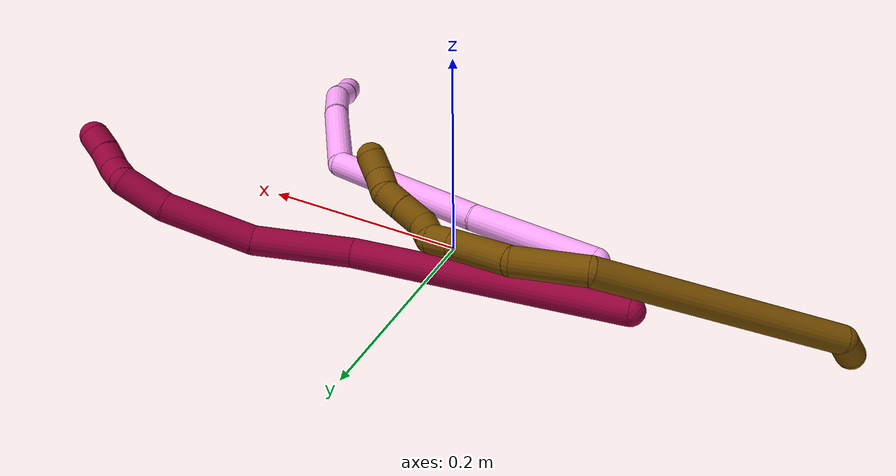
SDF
<sdf version="1.7">
 <world name="default">
  <model name="4">
   <static>0</static>
   <link name="4">
    <collision name="collision-cylinder-e_1_1_4">
     <pose>0.018922 -0.053253 0.024342 1.14205 0.312576 0.201767</pose>
     <geometry><cylinder><radius>0.0125</radius><length>0.123068</length></cylinder></geometry>
     <surface>
      <friction><ode><mu>1.16</mu><mu2>1.16</mu2><slip1>0</slip1><slip2>0</slip2></ode></friction>
      <contact><ode><kp>1e+06</kp><kd>1</kd><max_vel>0</max_vel><min_depth>0.001</min_depth></ode></contact>
     </surface>
    </collision>
    <visual name="visual-cylinder-e_1_1_4">
     <pose>0.018922 -0.053253 0.024342 1.14205 0.312576 0.201767</pose>
     <geometry><cylinder><radius>0.0125</radius><length>0.123068</length></cylinder></geometry>
     <material><ambient>1 0.65098 0.996078 1</ambient></material>
    </visual>
    <collision name="collision-cylinder-e_2_4_5">
     <pose>0.077298 -0.179467 0.078582 1.18189 0.463934 0.314357</pose>
     <geometry><cylinder><radius>0.0125</radius><length>0.176339</length></cylinder></geometry>
     <surface>
      <friction><ode><mu>1.16</mu><mu2>1.16</mu2><slip1>0</slip1><slip2>0</slip2></ode></friction>
      <contact><ode><kp>1e+06</kp><kd>1</kd><max_vel>0</max_vel><min_depth>0.001</min_depth></ode></contact>
     </surface>
    </collision>
    <visual name="visual-cylinder-e_2_4_5">
     <pose>0.077298 -0.179467 0.078582 1.18189 0.463934 0.314357</pose>
     <geometry><cylinder><radius>0.0125</radius><length>0.176339</length></cylinder></geometry>
     <material><ambient>1 0.65098 0.996078 1</ambient></material>
    </visual>
    <collision name="collision-cylinder-e_3_5_6">
     <pose>0.150055 -0.282926 0.094485 2.00104 0.781638 1.14204</pose>
     <geometry><cylinder><radius>0.0125</radius><length>0.094552</length></cylinder></geometry>
     <surface>
      <friction><ode><mu>1.16</mu><mu2>1.16</mu2><slip1>0</slip1><slip2>0</slip2></ode></friction>
      <contact><ode><kp>1e+06</kp><kd>1</kd><max_vel>0</max_vel><min_depth>0.001</min_depth></ode></contact>
     </surface>
    </collision>
    <visual name="visual-cylinder-e_3_5_6">
     <pose>0.150055 -0.282926 0.094485 2.00104 0.781638 1.14204</pose>
     <geometry><cylinder><radius>0.0125</radius><length>0.094552</length></cylinder></geometry>
     <material><ambient>1 0.65098 0.996078 1</ambient></material>
    </visual>
    <collision name="collision-cylinder-e_4_6_7">
     <pose>0.206675 -0.327983 0.074219 1.97744 0.973709 1.35474</pose>
     <geometry><cylinder><radius>0.0125</radius><length>0.056392</length></cylinder></geometry>
     <surface>
      <friction><ode><mu>1.16</mu><mu2>1.16</mu2><slip1>0</slip1><slip2>0</slip2></ode></friction>
      <contact><ode><kp>1e+06</kp><kd>1</kd><max_vel>0</max_vel><min_depth>0.001</min_depth></ode></contact>
     </surface>
    </collision>
    <visual name="visual-cylinder-e_4_6_7">
     <pose>0.206675 -0.327983 0.074219 1.97744 0.973709 1.35474</pose>
     <geometry><cylinder><radius>0.0125</radius><length>0.056392</length></cylinder></geometry>
     <material><ambient>1 0.65098 0.996078 1</ambient></material>
    </visual>
    <collision name="collision-cylinder-e_5_7_8">
     <pose>0.240265 -0.344201 0.063858 2.75637 1.16489 2.56585</pose>
     <geometry><cylinder><radius>0.0125</radius><length>0.022361</length></cylinder></geometry>
     <surface>
      <friction><ode><mu>1.16</mu><mu2>1.16</mu2><slip1>0</slip1><slip2>0</slip2></ode></friction>
      <contact><ode><kp>1e+06</kp><kd>1</kd><max_vel>0</max_vel><min_depth>0.001</min_depth></ode></contact>
     </surface>
    </collision>
    <visual name="visual-cylinder-e_5_7_8">
     <pose>0.240265 -0.344201 0.063858 2.75637 1.16489 2.56585</pose>
     <geometry><cylinder><radius>0.0125</radius><length>0.022361</length></cylinder></geometry>
     <material><ambient>1 0.65098 0.996078 1</ambient></material>
    </visual>
    <collision name="collision-cylinder-e_6_8_2">
     <pose>0.26301 -0.350546 0.056833 2.13009 1.1536 1.73122</pose>
     <geometry><cylinder><radius>0.0125</radius><length>0.027287</length></cylinder></geometry>
     <surface>
      <friction><ode><mu>1.16</mu><mu2>1.16</mu2><slip1>0</slip1><slip2>0</slip2></ode></friction>
      <contact><ode><kp>1e+06</kp><kd>1</kd><max_vel>0</max_vel><min_depth>0.001</min_depth></ode></contact>
     </surface>
    </collision>
    <visual name="visual-cylinder-e_6_8_2">
     <pose>0.26301 -0.350546 0.056833 2.13009 1.1536 1.73122</pose>
     <geometry><cylinder><radius>0.0125</radius><length>0.027287</length></cylinder></geometry>
     <material><ambient>1 0.65098 0.996078 1</ambient></material>
    </visual>
    <collision name="collision-sphere-2">
     <pose>0.275484 -0.355232 0.0539 0 -0 0</pose>
     <geometry><sphere><radius>0.0125</radius></sphere></geometry>
     <surface>
      <friction><ode><mu>1.16</mu><mu2>1.16</mu2><slip1>0</slip1><slip2>0</slip2></ode></friction>
      <contact><ode><kp>1e+06</kp><kd>1</kd><max_vel>0</max_vel><min_depth>0.001</min_depth></ode></contact>
     </surface>
    </collision>
    <visual name="visual-sphere-2">
     <pose>0.275484 -0.355232 0.0539 0 -0 0</pose>
     <geometry><sphere><radius>0.0125</radius></sphere></geometry>
     <material><ambient>1 0.65098 0.996078 1</ambient></material>
    </visual>
    <collision name="collision-sphere-4">
     <pose>0.037845 -0.106506 0.048684 0 -0 0</pose>
     <geometry><sphere><radius>0.0125</radius></sphere></geometry>
     <surface>
      <friction><ode><mu>1.16</mu><mu2>1.16</mu2><slip1>0</slip1><slip2>0</slip2></ode></friction>
      <contact><ode><kp>1e+06</kp><kd>1</kd><max_vel>0</max_vel><min_depth>0.001</min_depth></ode></contact>
     </surface>
    </collision>
    <visual name="visual-sphere-4">
     <pose>0.037845 -0.106506 0.048684 0 -0 0</pose>
     <geometry><sphere><radius>0.0125</radius></sphere></geometry>
     <material><ambient>1 0.65098 0.996078 1</ambient></material>
    </visual>
    <collision name="collision-sphere-1">
     <geometry><sphere><radius>0.0125</radius></sphere></geometry>
     <surface>
      <friction><ode><mu>1.16</mu><mu2>1.16</mu2><slip1>0</slip1><slip2>0</slip2></ode></friction>
      <contact><ode><kp>1e+06</kp><kd>1</kd><max_vel>0</max_vel><min_depth>0.001</min_depth></ode></contact>
     </surface>
    </collision>
    <visual name="visual-sphere-1">
     <geometry><sphere><radius>0.0125</radius></sphere></geometry>
     <material><ambient>1 0.65098 0.996078 1</ambient></material>
    </visual>
    <collision name="collision-sphere-8">
     <pose>0.250537 -0.34586 0.059766 0 -0 0</pose>
     <geometry><sphere><radius>0.0125</radius></sphere></geometry>
     <surface>
      <friction><ode><mu>1.16</mu><mu2>1.16</mu2><slip1>0</slip1><slip2>0</slip2></ode></friction>
      <contact><ode><kp>1e+06</kp><kd>1</kd><max_vel>0</max_vel><min_depth>0.001</min_depth></ode></contact>
     </surface>
    </collision>
    <visual name="visual-sphere-8">
     <pose>0.250537 -0.34586 0.059766 0 -0 0</pose>
     <geometry><sphere><radius>0.0125</radius></sphere></geometry>
     <material><ambient>1 0.65098 0.996078 1</ambient></material>
    </visual>
    <collision name="collision-sphere-5">
     <pose>0.116751 -0.252429 0.10848 0 -0 0</pose>
     <geometry><sphere><radius>0.0125</radius></sphere></geometry>
     <surface>
      <friction><ode><mu>1.16</mu><mu2>1.16</mu2><slip1>0</slip1><slip2>0</slip2></ode></friction>
      <contact><ode><kp>1e+06</kp><kd>1</kd><max_vel>0</max_vel><min_depth>0.001</min_depth></ode></contact>
     </surface>
    </collision>
    <visual name="visual-sphere-5">
     <pose>0.116751 -0.252429 0.10848 0 -0 0</pose>
     <geometry><sphere><radius>0.0125</radius></sphere></geometry>
     <material><ambient>1 0.65098 0.996078 1</ambient></material>
    </visual>
    <collision name="collision-sphere-6">
     <pose>0.183358 -0.313423 0.080489 0 -0 0</pose>
     <geometry><sphere><radius>0.0125</radius></sphere></geometry>
     <surface>
      <friction><ode><mu>1.16</mu><mu2>1.16</mu2><slip1>0</slip1><slip2>0</slip2></ode></friction>
      <contact><ode><kp>1e+06</kp><kd>1</kd><max_vel>0</max_vel><min_depth>0.001</min_depth></ode></contact>
     </surface>
    </collision>
    <visual name="visual-sphere-6">
     <pose>0.183358 -0.313423 0.080489 0 -0 0</pose>
     <geometry><sphere><radius>0.0125</radius></sphere></geometry>
     <material><ambient>1 0.65098 0.996078 1</ambient></material>
    </visual>
    <collision name="collision-sphere-7">
     <pose>0.229993 -0.342543 0.067949 0 -0 0</pose>
     <geometry><sphere><radius>0.0125</radius></sphere></geometry>
     <surface>
      <friction><ode><mu>1.16</mu><mu2>1.16</mu2><slip1>0</slip1><slip2>0</slip2></ode></friction>
      <contact><ode><kp>1e+06</kp><kd>1</kd><max_vel>0</max_vel><min_depth>0.001</min_depth></ode></contact>
     </surface>
    </collision>
    <visual name="visual-sphere-7">
     <pose>0.229993 -0.342543 0.067949 0 -0 0</pose>
     <geometry><sphere><radius>0.0125</radius></sphere></geometry>
     <material><ambient>1 0.65098 0.996078 1</ambient></material>
    </visual>
    <inertial>
     <pose>0.108703 -0.20142 0.065901 0 -0 0</pose>
     <mass>0.5</mass>
     <inertia>
      <ixx>0.000806</ixx>
      <ixy>0</ixy>
      <ixz>0</ixz>
      <iyy>0.000536</iyy>
      <iyz>0</iyz>
      <izz>0.000257</izz>
     </inertia>
    </inertial>
   </link>
   <pose>-0.149708 0.025445 0.055211 -2.45705 0.718578 -1.2798</pose>
  </model>
  <model name="8">
   <static>0</static>
   <link name="8">
    <collision name="collision-cylinder-e_1_1_4">
     <pose>0.029229 0.055454 0.097784 -0.515879 0.254377 -0.067447</pose>
     <geometry><cylinder><radius>0.0125</radius><length>0.232302</length></cylinder></geometry>
     <surface>
      <friction><ode><mu>1.16</mu><mu2>1.16</mu2><slip1>0</slip1><slip2>0</slip2></ode></friction>
      <contact><ode><kp>1e+06</kp><kd>1</kd><max_vel>0</max_vel><min_depth>0.001</min_depth></ode></contact>
     </surface>
    </collision>
    <visual name="visual-cylinder-e_1_1_4">
     <pose>0.029229 0.055454 0.097784 -0.515879 0.254377 -0.067447</pose>
     <geometry><cylinder><radius>0.0125</radius><length>0.232302</length></cylinder></geometry>
     <material><ambient>0.584314 0 0.227451 1</ambient></material>
    </visual>
    <collision name="collision-cylinder-e_2_4_5">
     <pose>0.062157 0.135637 0.22985 -0.624925 0.087297 -0.028217</pose>
     <geometry><cylinder><radius>0.0125</radius><length>0.084865</length></cylinder></geometry>
     <surface>
      <friction><ode><mu>1.16</mu><mu2>1.16</mu2><slip1>0</slip1><slip2>0</slip2></ode></friction>
      <contact><ode><kp>1e+06</kp><kd>1</kd><max_vel>0</max_vel><min_depth>0.001</min_depth></ode></contact>
     </surface>
    </collision>
    <visual name="visual-cylinder-e_2_4_5">
     <pose>0.062157 0.135637 0.22985 -0.624925 0.087297 -0.028217</pose>
     <geometry><cylinder><radius>0.0125</radius><length>0.084865</length></cylinder></geometry>
     <material><ambient>0.584314 0 0.227451 1</ambient></material>
    </visual>
    <collision name="collision-cylinder-e_3_5_6">
     <pose>0.063584 0.17599 0.299912 -0.41169 -0.058123 0.012139</pose>
     <geometry><cylinder><radius>0.0125</radius><length>0.078216</length></cylinder></geometry>
     <surface>
      <friction><ode><mu>1.16</mu><mu2>1.16</mu2><slip1>0</slip1><slip2>0</slip2></ode></friction>
      <contact><ode><kp>1e+06</kp><kd>1</kd><max_vel>0</max_vel><min_depth>0.001</min_depth></ode></contact>
     </surface>
    </collision>
    <visual name="visual-cylinder-e_3_5_6">
     <pose>0.063584 0.17599 0.299912 -0.41169 -0.058123 0.012139</pose>
     <geometry><cylinder><radius>0.0125</radius><length>0.078216</length></cylinder></geometry>
     <material><ambient>0.584314 0 0.227451 1</ambient></material>
    </visual>
    <collision name="collision-cylinder-e_4_6_7">
     <pose>0.060621 0.19575 0.35576 -0.203306 -0.033748 0.003443</pose>
     <geometry><cylinder><radius>0.0125</radius><length>0.041004</length></cylinder></geometry>
     <surface>
      <friction><ode><mu>1.16</mu><mu2>1.16</mu2><slip1>0</slip1><slip2>0</slip2></ode></friction>
      <contact><ode><kp>1e+06</kp><kd>1</kd><max_vel>0</max_vel><min_depth>0.001</min_depth></ode></contact>
     </surface>
    </collision>
    <visual name="visual-cylinder-e_4_6_7">
     <pose>0.060621 0.19575 0.35576 -0.203306 -0.033748 0.003443</pose>
     <geometry><cylinder><radius>0.0125</radius><length>0.041004</length></cylinder></geometry>
     <material><ambient>0.584314 0 0.227451 1</ambient></material>
    </visual>
    <collision name="collision-cylinder-e_5_7_8">
     <pose>0.067044 0.199088 0.384867 0.088206 0.664987 0.030476</pose>
     <geometry><cylinder><radius>0.0125</radius><length>0.023063</length></cylinder></geometry>
     <surface>
      <friction><ode><mu>1.16</mu><mu2>1.16</mu2><slip1>0</slip1><slip2>0</slip2></ode></friction>
      <contact><ode><kp>1e+06</kp><kd>1</kd><max_vel>0</max_vel><min_depth>0.001</min_depth></ode></contact>
     </surface>
    </collision>
    <visual name="visual-cylinder-e_5_7_8">
     <pose>0.067044 0.199088 0.384867 0.088206 0.664987 0.030476</pose>
     <geometry><cylinder><radius>0.0125</radius><length>0.023063</length></cylinder></geometry>
     <material><ambient>0.584314 0 0.227451 1</ambient></material>
    </visual>
    <collision name="collision-cylinder-e_6_8_9">
     <pose>0.076974 0.19567 0.40326 0.272976 0.28204 0.03899</pose>
     <geometry><cylinder><radius>0.0125</radius><length>0.020226</length></cylinder></geometry>
     <surface>
      <friction><ode><mu>1.16</mu><mu2>1.16</mu2><slip1>0</slip1><slip2>0</slip2></ode></friction>
      <contact><ode><kp>1e+06</kp><kd>1</kd><max_vel>0</max_vel><min_depth>0.001</min_depth></ode></contact>
     </surface>
    </collision>
    <visual name="visual-cylinder-e_6_8_9">
     <pose>0.076974 0.19567 0.40326 0.272976 0.28204 0.03899</pose>
     <geometry><cylinder><radius>0.0125</radius><length>0.020226</length></cylinder></geometry>
     <material><ambient>0.584314 0 0.227451 1</ambient></material>
    </visual>
    <collision name="collision-cylinder-e_7_9_2">
     <pose>0.082731 0.191534 0.422222 0.156578 0.293733 0.023209</pose>
     <geometry><cylinder><radius>0.0125</radius><length>0.020324</length></cylinder></geometry>
     <surface>
      <friction><ode><mu>1.16</mu><mu2>1.16</mu2><slip1>0</slip1><slip2>0</slip2></ode></friction>
      <contact><ode><kp>1e+06</kp><kd>1</kd><max_vel>0</max_vel><min_depth>0.001</min_depth></ode></contact>
     </surface>
    </collision>
    <visual name="visual-cylinder-e_7_9_2">
     <pose>0.082731 0.191534 0.422222 0.156578 0.293733 0.023209</pose>
     <geometry><cylinder><radius>0.0125</radius><length>0.020324</length></cylinder></geometry>
     <material><ambient>0.584314 0 0.227451 1</ambient></material>
    </visual>
    <collision name="collision-sphere-2">
     <pose>0.085673 0.190018 0.431829 0 -0 0</pose>
     <geometry><sphere><radius>0.0125</radius></sphere></geometry>
     <surface>
      <friction><ode><mu>1.16</mu><mu2>1.16</mu2><slip1>0</slip1><slip2>0</slip2></ode></friction>
      <contact><ode><kp>1e+06</kp><kd>1</kd><max_vel>0</max_vel><min_depth>0.001</min_depth></ode></contact>
     </surface>
    </collision>
    <visual name="visual-sphere-2">
     <pose>0.085673 0.190018 0.431829 0 -0 0</pose>
     <geometry><sphere><radius>0.0125</radius></sphere></geometry>
     <material><ambient>0.584314 0 0.227451 1</ambient></material>
    </visual>
    <collision name="collision-sphere-9">
     <pose>0.079789 0.193051 0.412614 0 -0 0</pose>
     <geometry><sphere><radius>0.0125</radius></sphere></geometry>
     <surface>
      <friction><ode><mu>1.16</mu><mu2>1.16</mu2><slip1>0</slip1><slip2>0</slip2></ode></friction>
      <contact><ode><kp>1e+06</kp><kd>1</kd><max_vel>0</max_vel><min_depth>0.001</min_depth></ode></contact>
     </surface>
    </collision>
    <visual name="visual-sphere-9">
     <pose>0.079789 0.193051 0.412614 0 -0 0</pose>
     <geometry><sphere><radius>0.0125</radius></sphere></geometry>
     <material><ambient>0.584314 0 0.227451 1</ambient></material>
    </visual>
    <collision name="collision-sphere-4">
     <pose>0.058457 0.110907 0.195568 0 -0 0</pose>
     <geometry><sphere><radius>0.0125</radius></sphere></geometry>
     <surface>
      <friction><ode><mu>1.16</mu><mu2>1.16</mu2><slip1>0</slip1><slip2>0</slip2></ode></friction>
      <contact><ode><kp>1e+06</kp><kd>1</kd><max_vel>0</max_vel><min_depth>0.001</min_depth></ode></contact>
     </surface>
    </collision>
    <visual name="visual-sphere-4">
     <pose>0.058457 0.110907 0.195568 0 -0 0</pose>
     <geometry><sphere><radius>0.0125</radius></sphere></geometry>
     <material><ambient>0.584314 0 0.227451 1</ambient></material>
    </visual>
    <collision name="collision-sphere-1">
     <geometry><sphere><radius>0.0125</radius></sphere></geometry>
     <surface>
      <friction><ode><mu>1.16</mu><mu2>1.16</mu2><slip1>0</slip1><slip2>0</slip2></ode></friction>
      <contact><ode><kp>1e+06</kp><kd>1</kd><max_vel>0</max_vel><min_depth>0.001</min_depth></ode></contact>
     </surface>
    </collision>
    <visual name="visual-sphere-1">
     <geometry><sphere><radius>0.0125</radius></sphere></geometry>
     <material><ambient>0.584314 0 0.227451 1</ambient></material>
    </visual>
    <collision name="collision-sphere-8">
     <pose>0.07416 0.198289 0.393906 0 -0 0</pose>
     <geometry><sphere><radius>0.0125</radius></sphere></geometry>
     <surface>
      <friction><ode><mu>1.16</mu><mu2>1.16</mu2><slip1>0</slip1><slip2>0</slip2></ode></friction>
      <contact><ode><kp>1e+06</kp><kd>1</kd><max_vel>0</max_vel><min_depth>0.001</min_depth></ode></contact>
     </surface>
    </collision>
    <visual name="visual-sphere-8">
     <pose>0.07416 0.198289 0.393906 0 -0 0</pose>
     <geometry><sphere><radius>0.0125</radius></sphere></geometry>
     <material><ambient>0.584314 0 0.227451 1</ambient></material>
    </visual>
    <collision name="collision-sphere-5">
     <pose>0.065856 0.160367 0.264132 0 -0 0</pose>
     <geometry><sphere><radius>0.0125</radius></sphere></geometry>
     <surface>
      <friction><ode><mu>1.16</mu><mu2>1.16</mu2><slip1>0</slip1><slip2>0</slip2></ode></friction>
      <contact><ode><kp>1e+06</kp><kd>1</kd><max_vel>0</max_vel><min_depth>0.001</min_depth></ode></contact>
     </surface>
    </collision>
    <visual name="visual-sphere-5">
     <pose>0.065856 0.160367 0.264132 0 -0 0</pose>
     <geometry><sphere><radius>0.0125</radius></sphere></geometry>
     <material><ambient>0.584314 0 0.227451 1</ambient></material>
    </visual>
    <collision name="collision-sphere-6">
     <pose>0.061313 0.191613 0.335692 0 -0 0</pose>
     <geometry><sphere><radius>0.0125</radius></sphere></geometry>
     <surface>
      <friction><ode><mu>1.16</mu><mu2>1.16</mu2><slip1>0</slip1><slip2>0</slip2></ode></friction>
      <contact><ode><kp>1e+06</kp><kd>1</kd><max_vel>0</max_vel><min_depth>0.001</min_depth></ode></contact>
     </surface>
    </collision>
    <visual name="visual-sphere-6">
     <pose>0.061313 0.191613 0.335692 0 -0 0</pose>
     <geometry><sphere><radius>0.0125</radius></sphere></geometry>
     <material><ambient>0.584314 0 0.227451 1</ambient></material>
    </visual>
    <collision name="collision-sphere-7">
     <pose>0.059929 0.199888 0.375828 0 -0 0</pose>
     <geometry><sphere><radius>0.0125</radius></sphere></geometry>
     <surface>
      <friction><ode><mu>1.16</mu><mu2>1.16</mu2><slip1>0</slip1><slip2>0</slip2></ode></friction>
      <contact><ode><kp>1e+06</kp><kd>1</kd><max_vel>0</max_vel><min_depth>0.001</min_depth></ode></contact>
     </surface>
    </collision>
    <visual name="visual-sphere-7">
     <pose>0.059929 0.199888 0.375828 0 -0 0</pose>
     <geometry><sphere><radius>0.0125</radius></sphere></geometry>
     <material><ambient>0.584314 0 0.227451 1</ambient></material>
    </visual>
    <inertial>
     <pose>0.048617 0.117253 0.211761 0 -0 0</pose>
     <mass>0.5</mass>
     <inertia>
      <ixx>0.001063</ixx>
      <ixy>0</ixy>
      <ixz>0</ixz>
      <iyy>0.000964</iyy>
      <iyz>0</iyz>
      <izz>-0.000788</izz>
     </inertia>
    </inertial>
   </link>
   <pose>-0.204293 0.093772 0.07336 -0.757765 0.826563 -1.02197</pose>
  </model>
  <model name="12">
   <static>0</static>
   <link name="12">
    <collision name="collision-cylinder-e_1_1_4">
     <pose>0.009359 0.006418 0.005261 -0.884132 0.845375 -0.419523</pose>
     <geometry><cylinder><radius>0.0125</radius><length>0.025017</length></cylinder></geometry>
     <surface>
      <friction><ode><mu>1.16</mu><mu2>1.16</mu2><slip1>0</slip1><slip2>0</slip2></ode></friction>
      <contact><ode><kp>1e+06</kp><kd>1</kd><max_vel>0</max_vel><min_depth>0.001</min_depth></ode></contact>
     </surface>
    </collision>
    <visual name="visual-cylinder-e_1_1_4">
     <pose>0.009359 0.006418 0.005261 -0.884132 0.845375 -0.419523</pose>
     <geometry><cylinder><radius>0.0125</radius><length>0.025017</length></cylinder></geometry>
     <material><ambient>0.466667 0.301961 0 1</ambient></material>
    </visual>
    <collision name="collision-cylinder-e_2_4_5">
     <pose>0.130409 0.017884 0.008427 -1.96421 1.5219 -1.91862</pose>
     <geometry><cylinder><radius>0.0125</radius><length>0.22365</length></cylinder></geometry>
     <surface>
      <friction><ode><mu>1.16</mu><mu2>1.16</mu2><slip1>0</slip1><slip2>0</slip2></ode></friction>
      <contact><ode><kp>1e+06</kp><kd>1</kd><max_vel>0</max_vel><min_depth>0.001</min_depth></ode></contact>
     </surface>
    </collision>
    <visual name="visual-cylinder-e_2_4_5">
     <pose>0.130409 0.017884 0.008427 -1.96421 1.5219 -1.91862</pose>
     <geometry><cylinder><radius>0.0125</radius><length>0.22365</length></cylinder></geometry>
     <material><ambient>0.466667 0.301961 0 1</ambient></material>
    </visual>
    <collision name="collision-cylinder-e_3_5_6">
     <pose>0.270077 0.010363 0.000529 2.00332 1.11131 1.54091</pose>
     <geometry><cylinder><radius>0.0125</radius><length>0.062427</length></cylinder></geometry>
     <surface>
      <friction><ode><mu>1.16</mu><mu2>1.16</mu2><slip1>0</slip1><slip2>0</slip2></ode></friction>
      <contact><ode><kp>1e+06</kp><kd>1</kd><max_vel>0</max_vel><min_depth>0.001</min_depth></ode></contact>
     </surface>
    </collision>
    <visual name="visual-cylinder-e_3_5_6">
     <pose>0.270077 0.010363 0.000529 2.00332 1.11131 1.54091</pose>
     <geometry><cylinder><radius>0.0125</radius><length>0.062427</length></cylinder></geometry>
     <material><ambient>0.466667 0.301961 0 1</ambient></material>
    </visual>
    <collision name="collision-cylinder-e_4_6_7">
     <pose>0.316931 -0.024523 -0.006981 1.64719 0.700643 0.75139</pose>
     <geometry><cylinder><radius>0.0125</radius><length>0.058563</length></cylinder></geometry>
     <surface>
      <friction><ode><mu>1.16</mu><mu2>1.16</mu2><slip1>0</slip1><slip2>0</slip2></ode></friction>
      <contact><ode><kp>1e+06</kp><kd>1</kd><max_vel>0</max_vel><min_depth>0.001</min_depth></ode></contact>
     </surface>
    </collision>
    <visual name="visual-cylinder-e_4_6_7">
     <pose>0.316931 -0.024523 -0.006981 1.64719 0.700643 0.75139</pose>
     <geometry><cylinder><radius>0.0125</radius><length>0.058563</length></cylinder></geometry>
     <material><ambient>0.466667 0.301961 0 1</ambient></material>
    </visual>
    <collision name="collision-cylinder-e_5_7_8">
     <pose>0.344255 -0.053762 -0.009735 1.72074 0.878806 1.00015</pose>
     <geometry><cylinder><radius>0.0125</radius><length>0.021937</length></cylinder></geometry>
     <surface>
      <friction><ode><mu>1.16</mu><mu2>1.16</mu2><slip1>0</slip1><slip2>0</slip2></ode></friction>
      <contact><ode><kp>1e+06</kp><kd>1</kd><max_vel>0</max_vel><min_depth>0.001</min_depth></ode></contact>
     </surface>
    </collision>
    <visual name="visual-cylinder-e_5_7_8">
     <pose>0.344255 -0.053762 -0.009735 1.72074 0.878806 1.00015</pose>
     <geometry><cylinder><radius>0.0125</radius><length>0.021937</length></cylinder></geometry>
     <material><ambient>0.466667 0.301961 0 1</ambient></material>
    </visual>
    <collision name="collision-cylinder-e_6_8_9">
     <pose>0.355578 -0.070515 -0.006709 1.17822 0.264094 0.177055</pose>
     <geometry><cylinder><radius>0.0125</radius><length>0.022049</length></cylinder></geometry>
     <surface>
      <friction><ode><mu>1.16</mu><mu2>1.16</mu2><slip1>0</slip1><slip2>0</slip2></ode></friction>
      <contact><ode><kp>1e+06</kp><kd>1</kd><max_vel>0</max_vel><min_depth>0.001</min_depth></ode></contact>
     </surface>
    </collision>
    <visual name="visual-cylinder-e_6_8_9">
     <pose>0.355578 -0.070515 -0.006709 1.17822 0.264094 0.177055</pose>
     <geometry><cylinder><radius>0.0125</radius><length>0.022049</length></cylinder></geometry>
     <material><ambient>0.466667 0.301961 0 1</ambient></material>
    </visual>
    <collision name="collision-cylinder-e_7_9_10">
     <pose>0.368265 -0.086594 0.001489 0.987019 0.91889 0.520207</pose>
     <geometry><cylinder><radius>0.0125</radius><length>0.024678</length></cylinder></geometry>
     <surface>
      <friction><ode><mu>1.16</mu><mu2>1.16</mu2><slip1>0</slip1><slip2>0</slip2></ode></friction>
      <contact><ode><kp>1e+06</kp><kd>1</kd><max_vel>0</max_vel><min_depth>0.001</min_depth></ode></contact>
     </surface>
    </collision>
    <visual name="visual-cylinder-e_7_9_10">
     <pose>0.368265 -0.086594 0.001489 0.987019 0.91889 0.520207</pose>
     <geometry><cylinder><radius>0.0125</radius><length>0.024678</length></cylinder></geometry>
     <material><ambient>0.466667 0.301961 0 1</ambient></material>
    </visual>
    <collision name="collision-cylinder-e_8_10_11">
     <pose>0.385887 -0.098344 0.009049 1.01295 0.877914 0.509589</pose>
     <geometry><cylinder><radius>0.0125</radius><length>0.02031</length></cylinder></geometry>
     <surface>
      <friction><ode><mu>1.16</mu><mu2>1.16</mu2><slip1>0</slip1><slip2>0</slip2></ode></friction>
      <contact><ode><kp>1e+06</kp><kd>1</kd><max_vel>0</max_vel><min_depth>0.001</min_depth></ode></contact>
     </surface>
    </collision>
    <visual name="visual-cylinder-e_8_10_11">
     <pose>0.385887 -0.098344 0.009049 1.01295 0.877914 0.509589</pose>
     <geometry><cylinder><radius>0.0125</radius><length>0.02031</length></cylinder></geometry>
     <material><ambient>0.466667 0.301961 0 1</ambient></material>
    </visual>
    <collision name="collision-cylinder-e_9_11_12">
     <pose>0.396964 -0.111951 0.017923 0.979533 0.322722 0.173114</pose>
     <geometry><cylinder><radius>0.0125</radius><length>0.020584</length></cylinder></geometry>
     <surface>
      <friction><ode><mu>1.16</mu><mu2>1.16</mu2><slip1>0</slip1><slip2>0</slip2></ode></friction>
      <contact><ode><kp>1e+06</kp><kd>1</kd><max_vel>0</max_vel><min_depth>0.001</min_depth></ode></contact>
     </surface>
    </collision>
    <visual name="visual-cylinder-e_9_11_12">
     <pose>0.396964 -0.111951 0.017923 0.979533 0.322722 0.173114</pose>
     <geometry><cylinder><radius>0.0125</radius><length>0.020584</length></cylinder></geometry>
     <material><ambient>0.466667 0.301961 0 1</ambient></material>
    </visual>
    <collision name="collision-cylinder-e_10_12_2">
     <pose>0.40557 -0.125653 0.0303 0.679133 0.539902 0.194873</pose>
     <geometry><cylinder><radius>0.0125</radius><length>0.020784</length></cylinder></geometry>
     <surface>
      <friction><ode><mu>1.16</mu><mu2>1.16</mu2><slip1>0</slip1><slip2>0</slip2></ode></friction>
      <contact><ode><kp>1e+06</kp><kd>1</kd><max_vel>0</max_vel><min_depth>0.001</min_depth></ode></contact>
     </surface>
    </collision>
    <visual name="visual-cylinder-e_10_12_2">
     <pose>0.40557 -0.125653 0.0303 0.679133 0.539902 0.194873</pose>
     <geometry><cylinder><radius>0.0125</radius><length>0.020784</length></cylinder></geometry>
     <material><ambient>0.466667 0.301961 0 1</ambient></material>
    </visual>
    <collision name="collision-sphere-2">
     <pose>0.410912 -0.131252 0.037236 0 -0 0</pose>
     <geometry><sphere><radius>0.0125</radius></sphere></geometry>
     <surface>
      <friction><ode><mu>1.16</mu><mu2>1.16</mu2><slip1>0</slip1><slip2>0</slip2></ode></friction>
      <contact><ode><kp>1e+06</kp><kd>1</kd><max_vel>0</max_vel><min_depth>0.001</min_depth></ode></contact>
     </surface>
    </collision>
    <visual name="visual-sphere-2">
     <pose>0.410912 -0.131252 0.037236 0 -0 0</pose>
     <geometry><sphere><radius>0.0125</radius></sphere></geometry>
     <material><ambient>0.466667 0.301961 0 1</ambient></material>
    </visual>
    <collision name="collision-sphere-12">
     <pose>0.400228 -0.120054 0.023363 0 -0 0</pose>
     <geometry><sphere><radius>0.0125</radius></sphere></geometry>
     <surface>
      <friction><ode><mu>1.16</mu><mu2>1.16</mu2><slip1>0</slip1><slip2>0</slip2></ode></friction>
      <contact><ode><kp>1e+06</kp><kd>1</kd><max_vel>0</max_vel><min_depth>0.001</min_depth></ode></contact>
     </surface>
    </collision>
    <visual name="visual-sphere-12">
     <pose>0.400228 -0.120054 0.023363 0 -0 0</pose>
     <geometry><sphere><radius>0.0125</radius></sphere></geometry>
     <material><ambient>0.466667 0.301961 0 1</ambient></material>
    </visual>
    <collision name="collision-sphere-11">
     <pose>0.3937 -0.103847 0.012482 0 -0 0</pose>
     <geometry><sphere><radius>0.0125</radius></sphere></geometry>
     <surface>
      <friction><ode><mu>1.16</mu><mu2>1.16</mu2><slip1>0</slip1><slip2>0</slip2></ode></friction>
      <contact><ode><kp>1e+06</kp><kd>1</kd><max_vel>0</max_vel><min_depth>0.001</min_depth></ode></contact>
     </surface>
    </collision>
    <visual name="visual-sphere-11">
     <pose>0.3937 -0.103847 0.012482 0 -0 0</pose>
     <geometry><sphere><radius>0.0125</radius></sphere></geometry>
     <material><ambient>0.466667 0.301961 0 1</ambient></material>
    </visual>
    <collision name="collision-sphere-10">
     <pose>0.378073 -0.092841 0.005615 0 -0 0</pose>
     <geometry><sphere><radius>0.0125</radius></sphere></geometry>
     <surface>
      <friction><ode><mu>1.16</mu><mu2>1.16</mu2><slip1>0</slip1><slip2>0</slip2></ode></friction>
      <contact><ode><kp>1e+06</kp><kd>1</kd><max_vel>0</max_vel><min_depth>0.001</min_depth></ode></contact>
     </surface>
    </collision>
    <visual name="visual-sphere-10">
     <pose>0.378073 -0.092841 0.005615 0 -0 0</pose>
     <geometry><sphere><radius>0.0125</radius></sphere></geometry>
     <material><ambient>0.466667 0.301961 0 1</ambient></material>
    </visual>
    <collision name="collision-sphere-9">
     <pose>0.358456 -0.080348 -0.002638 0 -0 0</pose>
     <geometry><sphere><radius>0.0125</radius></sphere></geometry>
     <surface>
      <friction><ode><mu>1.16</mu><mu2>1.16</mu2><slip1>0</slip1><slip2>0</slip2></ode></friction>
      <contact><ode><kp>1e+06</kp><kd>1</kd><max_vel>0</max_vel><min_depth>0.001</min_depth></ode></contact>
     </surface>
    </collision>
    <visual name="visual-sphere-9">
     <pose>0.358456 -0.080348 -0.002638 0 -0 0</pose>
     <geometry><sphere><radius>0.0125</radius></sphere></geometry>
     <material><ambient>0.466667 0.301961 0 1</ambient></material>
    </visual>
    <collision name="collision-sphere-4">
     <pose>0.018718 0.012836 0.010522 0 -0 0</pose>
     <geometry><sphere><radius>0.0125</radius></sphere></geometry>
     <surface>
      <friction><ode><mu>1.16</mu><mu2>1.16</mu2><slip1>0</slip1><slip2>0</slip2></ode></friction>
      <contact><ode><kp>1e+06</kp><kd>1</kd><max_vel>0</max_vel><min_depth>0.001</min_depth></ode></contact>
     </surface>
    </collision>
    <visual name="visual-sphere-4">
     <pose>0.018718 0.012836 0.010522 0 -0 0</pose>
     <geometry><sphere><radius>0.0125</radius></sphere></geometry>
     <material><ambient>0.466667 0.301961 0 1</ambient></material>
    </visual>
    <collision name="collision-sphere-1">
     <geometry><sphere><radius>0.0125</radius></sphere></geometry>
     <surface>
      <friction><ode><mu>1.16</mu><mu2>1.16</mu2><slip1>0</slip1><slip2>0</slip2></ode></friction>
      <contact><ode><kp>1e+06</kp><kd>1</kd><max_vel>0</max_vel><min_depth>0.001</min_depth></ode></contact>
     </surface>
    </collision>
    <visual name="visual-sphere-1">
     <geometry><sphere><radius>0.0125</radius></sphere></geometry>
     <material><ambient>0.466667 0.301961 0 1</ambient></material>
    </visual>
    <collision name="collision-sphere-8">
     <pose>0.3527 -0.060682 -0.010781 0 -0 0</pose>
     <geometry><sphere><radius>0.0125</radius></sphere></geometry>
     <surface>
      <friction><ode><mu>1.16</mu><mu2>1.16</mu2><slip1>0</slip1><slip2>0</slip2></ode></friction>
      <contact><ode><kp>1e+06</kp><kd>1</kd><max_vel>0</max_vel><min_depth>0.001</min_depth></ode></contact>
     </surface>
    </collision>
    <visual name="visual-sphere-8">
     <pose>0.3527 -0.060682 -0.010781 0 -0 0</pose>
     <geometry><sphere><radius>0.0125</radius></sphere></geometry>
     <material><ambient>0.466667 0.301961 0 1</ambient></material>
    </visual>
    <collision name="collision-sphere-5">
     <pose>0.2421 0.022931 0.006332 0 -0 0</pose>
     <geometry><sphere><radius>0.0125</radius></sphere></geometry>
     <surface>
      <friction><ode><mu>1.16</mu><mu2>1.16</mu2><slip1>0</slip1><slip2>0</slip2></ode></friction>
      <contact><ode><kp>1e+06</kp><kd>1</kd><max_vel>0</max_vel><min_depth>0.001</min_depth></ode></contact>
     </surface>
    </collision>
    <visual name="visual-sphere-5">
     <pose>0.2421 0.022931 0.006332 0 -0 0</pose>
     <geometry><sphere><radius>0.0125</radius></sphere></geometry>
     <material><ambient>0.466667 0.301961 0 1</ambient></material>
    </visual>
    <collision name="collision-sphere-6">
     <pose>0.298053 -0.002205 -0.005273 0 -0 0</pose>
     <geometry><sphere><radius>0.0125</radius></sphere></geometry>
     <surface>
      <friction><ode><mu>1.16</mu><mu2>1.16</mu2><slip1>0</slip1><slip2>0</slip2></ode></friction>
      <contact><ode><kp>1e+06</kp><kd>1</kd><max_vel>0</max_vel><min_depth>0.001</min_depth></ode></contact>
     </surface>
    </collision>
    <visual name="visual-sphere-6">
     <pose>0.298053 -0.002205 -0.005273 0 -0 0</pose>
     <geometry><sphere><radius>0.0125</radius></sphere></geometry>
     <material><ambient>0.466667 0.301961 0 1</ambient></material>
    </visual>
    <collision name="collision-sphere-7">
     <pose>0.335809 -0.046842 -0.00869 0 -0 0</pose>
     <geometry><sphere><radius>0.0125</radius></sphere></geometry>
     <surface>
      <friction><ode><mu>1.16</mu><mu2>1.16</mu2><slip1>0</slip1><slip2>0</slip2></ode></friction>
      <contact><ode><kp>1e+06</kp><kd>1</kd><max_vel>0</max_vel><min_depth>0.001</min_depth></ode></contact>
     </surface>
    </collision>
    <visual name="visual-sphere-7">
     <pose>0.335809 -0.046842 -0.00869 0 -0 0</pose>
     <geometry><sphere><radius>0.0125</radius></sphere></geometry>
     <material><ambient>0.466667 0.301961 0 1</ambient></material>
    </visual>
    <inertial>
     <pose>0.227478 -0.016827 0.004996 0 -0 0</pose>
     <mass>0.5</mass>
     <inertia>
      <ixx>1.5e-05</ixx>
      <ixy>0</ixy>
      <ixz>0</ixz>
      <iyy>0.000942</iyy>
      <iyz>0</iyz>
      <izz>-0.000991</izz>
     </inertia>
    </inertial>
   </link>
   <pose>-0.364021 -0.007802 0.012197 0.537649 -0.349505 0.472652</pose>
  </model>
 </world>
</sdf>
